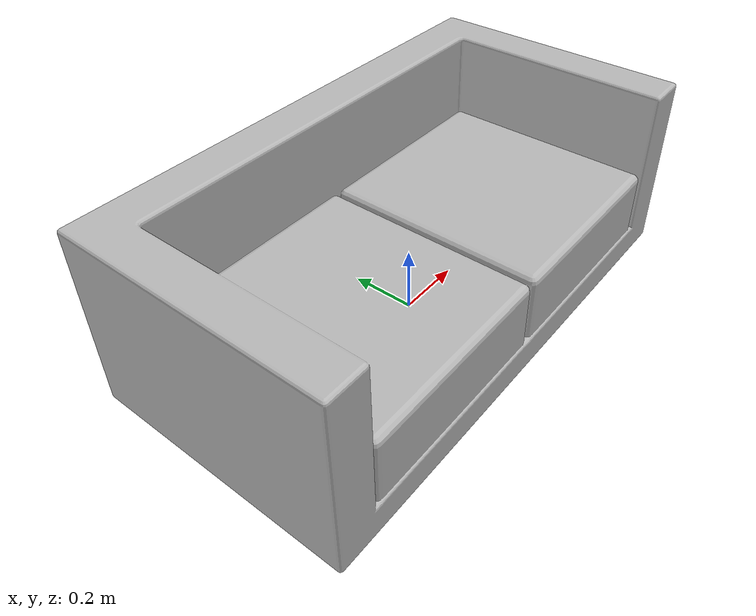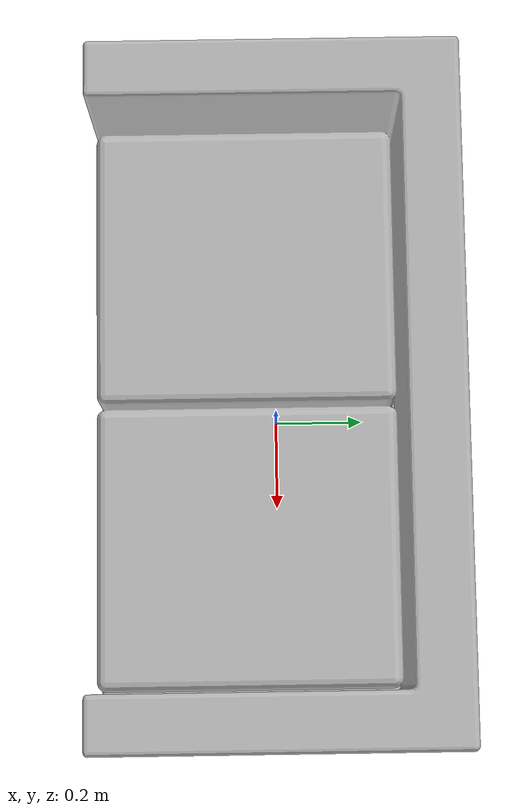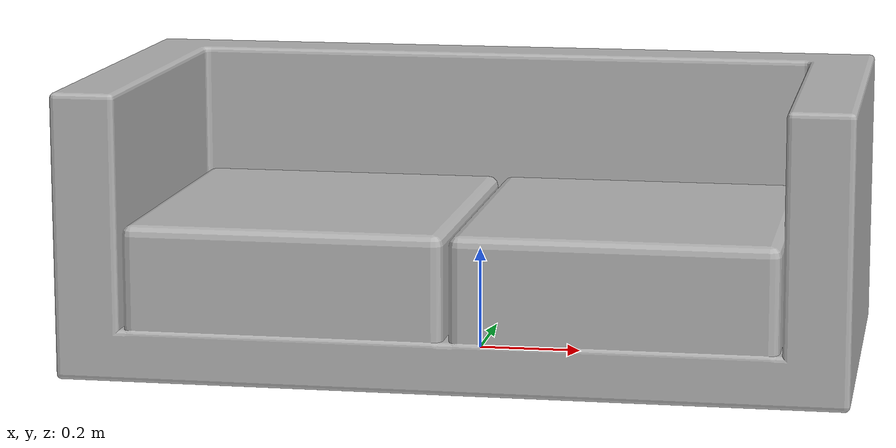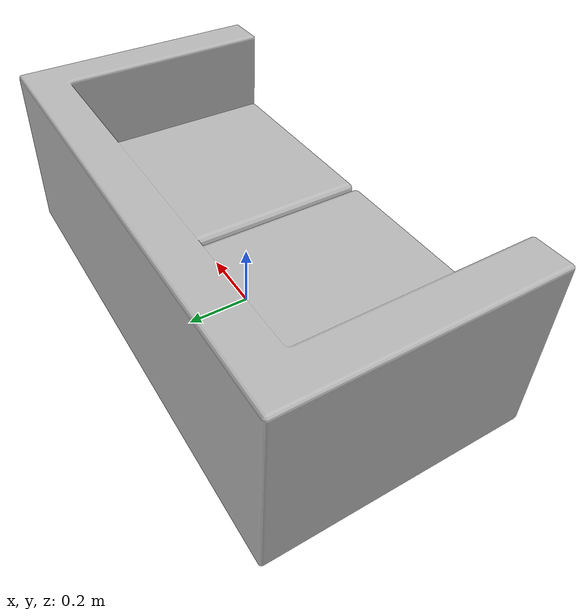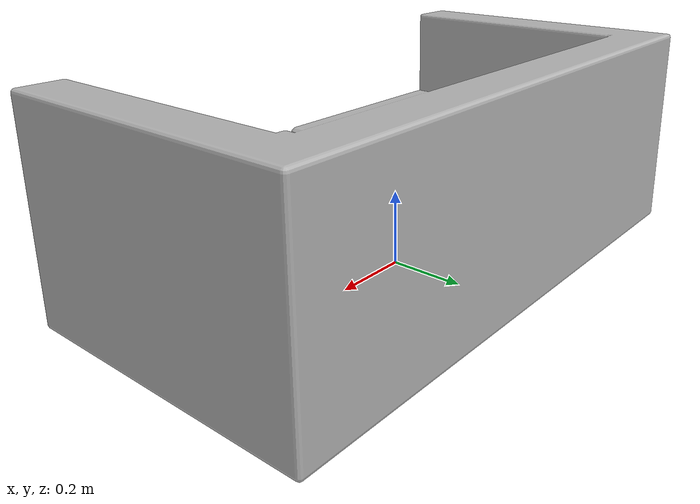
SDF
<sdf version='1.7'>
  <model name='Sofa_U'>
    <link name='Sofa_U'>
      <inertial>
        <pose>0 0.031101 0.20492 0 -0 0</pose>
        <mass>444</mass>
        <inertia>
          <ixx>34.103</ixx>
          <ixy>-1.3593e-07</ixy>
          <ixz>-3.539e-08</ixz>
          <iyy>103.94</iyy>
          <iyz>2.954</iyz>
          <izz>120.9</izz>
        </inertia>
      </inertial>
      <collision name='Sofa_U_collision'>
        <pose>0 0 0 0 -0 0</pose>
        <geometry>
          <mesh>
            <scale>1 1 1</scale>
            <uri>model://Sofa_U/meshes/Sofa_U.STL</uri>
          </mesh>
        </geometry>
      </collision>
      <visual name='Sofa_U_visual'>
        <pose>0 0 0 0 -0 0</pose>
        <geometry>
          <mesh>
            <scale>1 1 1</scale>
            <uri>model://Sofa_U/meshes/Sofa_U.STL</uri>
          </mesh>
        </geometry>
      </visual>
    </link>
  </model>
</sdf>
